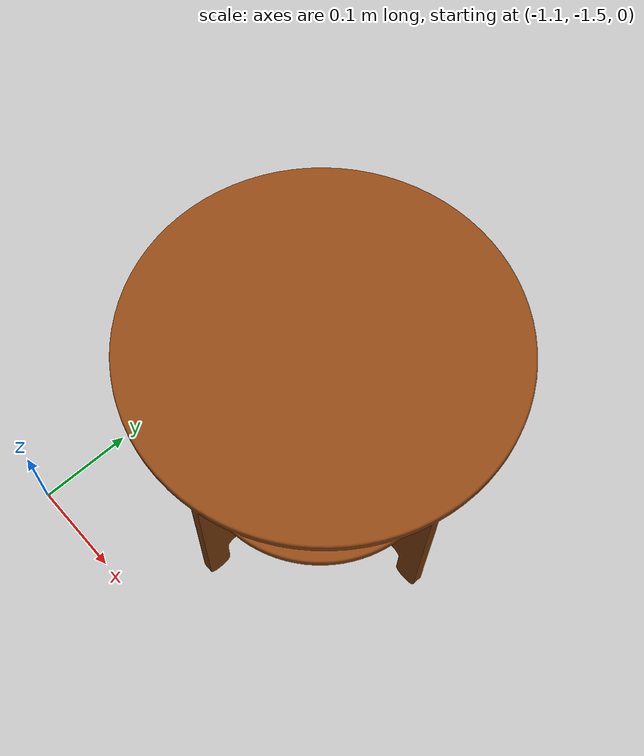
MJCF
<mujoco model="mesh_model">
        <asset>
            <mesh name="end_table" file="end_table.STL" scale="0.0005 0.0005 0.0005"/>
        </asset>
        <worldbody>
            <body>
                <geom type="mesh" mesh="end_table" contype="0" conaffinity="0" pos="-1.1 -1.1 0" euler="90 0 0" rgba="0.545 0.271 0.075 1"/>
            </body>
        </worldbody>
    </mujoco>
